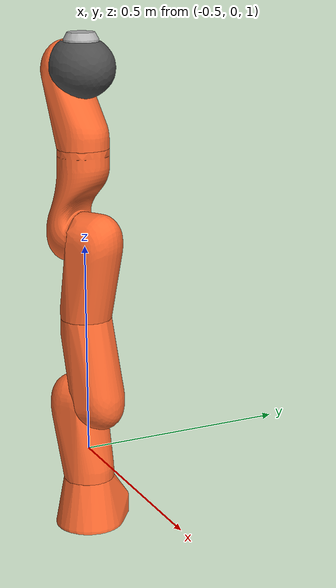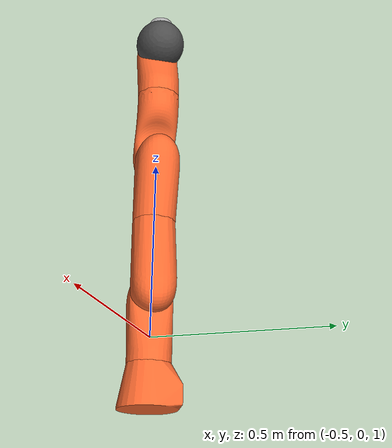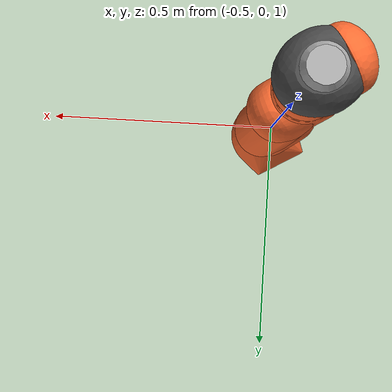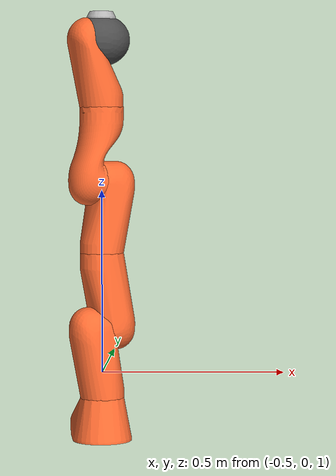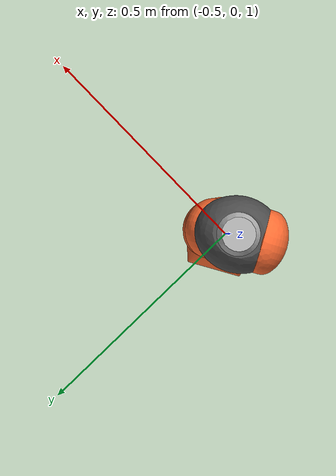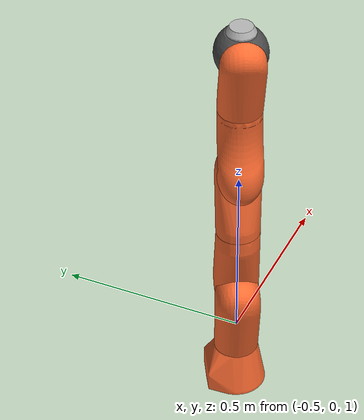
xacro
<?xml version="1.0"?>
<robot xmlns:xacro="http://www.ros.org/wiki/xacro"
       name="lwr" >

  <property name="M_PI" value="3.1415926535897931" />
  <property name="XORIGIN" value="-0.500" />
  <property name="YORIGIN" value="0.000" />
  <property name="ZORIGIN" value="0.800" />
  <!-- lbr-->
  <xacro:include filename="$(find lwr_description)/urdf/lwr.urdf.xacro" />

  <!-- generic simulator_gazebo plugins -->

  <xacro:include filename="$(find lwr_description)/gazebo/lwr.gazebo.urdf.xacro"/>
  <xacro:include filename="$(find lwr_description)/urdf/lwr.transmission.xacro"/>
  <!-- materials for visualization -->
  <xacro:include filename="$(find lwr_description)/urdf/materials.urdf.xacro" />

  <!-- world-->
  <link name="world"/>

  <link name="base_link"/>
  <joint name="base_joint" type="fixed">
    <parent link="world"/>
    <child link="base_link"/>
    <origin xyz="${XORIGIN} ${YORIGIN} ${ZORIGIN}"/>
  </joint>

  <gazebo reference="base_link">
    <static>true</static>>
  </gazebo>

  <xacro:macro name="tool">
    <link name="ati_link">
      <inertial>
        <origin xyz="0 0 0" rpy="0 0 0" />
        <mass value="0.730" />
        <inertia
          ixx="0.0001"
          ixy="0.0"
          ixz="0.0"
          iyy="0.0001"
          iyz="0.0"
          izz="0.0001" />
      </inertial>
    </link>
    <joint name="ati_joint" type="fixed">
       <parent link="link_7" />
       <child link="ati_link" />
       <origin xyz="0 0 0.0488" rpy="0 0 ${20.0*M_PI/180.0}" />
    </joint>
    <link name="ati_polaris_link"/>
    <joint name="ati_polaris_joint" type="fixed">
       <parent link="ati_link" />
       <child link="ati_polaris_link" />
       <origin xyz="0 0 0.0584" rpy="0 0 0" />
    </joint>
  </xacro:macro>

  <!--lbr-->
  <xacro:lwr parent="base_link">
    <!-- Position from origin -->
    <origin xyz="0 0 0.01" rpy="0 0 ${2*M_PI/3}" />
  </xacro:lwr>

   <xacro:lwr_gazebo/>
   <xacro:lwr_transmission/>
   <xacro:tool/>

</robot>

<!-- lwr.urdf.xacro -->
<robot xmlns:xacro="http://ros.org/wiki/xacro"
      xmlns:controller="http://playerstage.sourceforge.net/gazebo/xmlschema/#controller"
   name="lwr" >
   <xacro:property name="velocity_scale" value="1.0"/>
   <xacro:property name="effort_scale" value="10.0"/>

   <xacro:property name="M_PI" value="3.1415926535897931" />

   <xacro:property name="damping_factor" value="0.1"/>

   <xacro:property name="d0" value="${damping_factor*2.0}"/>
   <xacro:property name="d1" value="${damping_factor*1.8}"/>
   <xacro:property name="d2" value="${damping_factor*1.0}"/>
   <xacro:property name="d3" value="${damping_factor*1.5}"/>
   <xacro:property name="d4" value="${damping_factor*1.2}"/>
   <xacro:property name="d5" value="${damping_factor*1.0}"/>
   <xacro:property name="d6" value="${damping_factor*1.0}"/>

   <xacro:property name="friction_factor" value="1.0"/>

   <xacro:property name="f0" value="${friction_factor*1.0}"/>
   <xacro:property name="f1" value="${friction_factor*1.0}"/>
   <xacro:property name="f2" value="${friction_factor*1.0}"/>
   <xacro:property name="f3" value="${friction_factor*1.0}"/>
   <xacro:property name="f4" value="${friction_factor*0.4}"/>
   <xacro:property name="f5" value="${friction_factor*0.1}"/>
   <xacro:property name="f6" value="${friction_factor*0.1}"/>

   <xacro:macro name="lwr" params="parent *origin ">

      <!-- joint between {parent} and lwr_0_link -->
      <joint name="joint_base" type="fixed">

         <xacro:insert_block name="origin" />
         <parent link="${parent}" />
         <child link="link_0" />
      </joint>
      <link name="link_0">
          <inertial>
            <origin
              xyz="-0.000638499331014356 5.02538509694617E-06 0.0482289968116927"
              rpy="0 0 0" />
            <mass
              value="1.21032454350876" />
            <inertia
              ixx="0.0262560565710656"
              ixy="-5.2754950052563E-07"
              ixz="3.77940202490646E-05"
              iyy="0.0280724642508563"
              iyz="-2.56972470148208E-07"
              izz="0.0306998250407766" />
          </inertial>
         <visual>
            <origin xyz="0 0 0" rpy="0 0 ${M_PI}" />
            <geometry>
               <mesh filename="package://lwr_description/meshes/lwr/link0.stl" />
            </geometry>
            <material name="color_j0" />
         </visual>
         <collision>
            <origin xyz="0 0 0" rpy="0 0 ${M_PI}" />
            <geometry>
               <mesh filename="package://lwr_description/meshes/lwr/link0_c2.stl" />
            </geometry>
         </collision>
      </link>
      <!-- joint between lwr_0_link and lwr_1_link -->
      <joint name="joint_0" type="revolute">

         <parent link="link_0" />
         <child link="link_1" />
         <limit lower="${-170 * M_PI / 180}" upper="${170 * M_PI / 180}" effort="${effort_scale * 200}" velocity="${velocity_scale * 112.5 * M_PI / 180}" />

         <dynamics friction="${f0}" damping="${d0}"/>
         <origin xyz="0 0 0.102" rpy="0 0 0" />
         <axis xyz="0 0 1" />
      </joint>
      <link name="link_1">
          <inertial>
            <origin
              xyz="-6.33965437334127E-08 0.0233273473346096 0.118146290406178"
              rpy="0 0 0" />
              <mass
                value="2.30339938771869" />
            <inertia
              ixx="0.156081163626041"
              ixy="5.97319920503909E-08"
              ixz="-1.64780770629425E-07"
              iyy="0.153467542173805"
              iyz="0.0319168949093809"
              izz="0.0440736079943446" />
          </inertial>
         <visual>
            <origin xyz="0 0 0" rpy="0 0 ${M_PI}" />
            <geometry>
               <mesh filename="package://lwr_description/meshes/lwr/link1.stl" />
            </geometry>
            <material name="color_j1" />
         </visual>
         <collision>
            <origin xyz="0 0 0" rpy="0 0 ${M_PI}" />
            <geometry>
               <mesh filename="package://lwr_description/meshes/lwr/link1_c2.stl" />
            </geometry>
         </collision>
      </link>
      <!-- joint between lwr_1_link and lwr_2_link -->
      <joint name="joint_1" type="revolute">

         <parent link="link_1" />
         <child link="link_2" />
         <limit lower="${-120 * M_PI / 180}" upper="${120 * M_PI / 180}" effort="${effort_scale * 200}" velocity="${velocity_scale * 112.5 * M_PI / 180}" />

         <dynamics friction="${f1}" damping="${d1}"/>
         <origin xyz="0 0.0 0.2085" rpy="0 0 0" />
         <axis xyz="0 -1 0" />
      </joint>
      <link name="link_2">
    <inertial>
      <origin
        xyz="1.26774962153076E-06 -0.032746486541291 0.0736556727355962"
        rpy="0 0 0" />
        <mass
          value="2.30343543179071" />
      <inertia
        ixx="0.0142348526057094"
        ixy="-3.73763310100809E-08"
        ixz="1.70703603169075E-07"
        iyy="0.0141319978448755"
        iyz="0.00228090337255746"
        izz="0.00424792208583136" />
    </inertial>
         <visual>
            <origin xyz="0 0 0" rpy="0 0 ${M_PI}" />
            <geometry>
               <mesh filename="package://lwr_description/meshes/lwr/link2.stl" />
            </geometry>
            <material name="color_j2" />
         </visual>
         <collision>
            <origin xyz="0 0 0" rpy="0 0 ${M_PI}" />
            <geometry>
               <mesh filename="package://lwr_description/meshes/lwr/link2_c2.stl" />
            </geometry>
         </collision>
      </link>
      <!-- joint between lwr_2_link and lwr_3_link -->
      <joint name="joint_2" type="revolute">

         <parent link="link_2" />
         <child link="link_3" />
         <limit lower="${-170 * M_PI / 180}" upper="${170 * M_PI / 180}" effort="${effort_scale * 100}" velocity="${velocity_scale * 112.5 * M_PI / 180}" />

         <dynamics friction="${f2}" damping="${d2}"/>
         <origin xyz="0 0 0.1915" rpy="0 0 0" />
         <axis xyz="0 0 1" />
      </joint>
      <link name="link_3">
    <inertial>
      <origin
        xyz="-1.40921289121243E-06 -0.0233297626126898 0.11815047247629"
        rpy="0 0 0" />
        <mass
          value="2.30342143971329" />
      <inertia
        ixx="0.0156098024078732"
        ixy="4.75479645197283E-08"
        ixz="1.17852233217589E-07"
        iyy="0.0153476851366831"
        iyz="-0.00319215869825882"
        izz="0.0044071430916942" />
    </inertial>
         <visual>
            <origin xyz="0 0 0" rpy="0 0 ${M_PI}" />
            <geometry>
               <mesh filename="package://lwr_description/meshes/lwr/link3.stl" />
            </geometry>
            <material name="color_j3" />
         </visual>
         <collision>
            <origin xyz="0 0 0" rpy="0 0 ${M_PI}" />
            <geometry>
               <mesh filename="package://lwr_description/meshes/lwr/link3_c2.stl" />
            </geometry>
         </collision>
      </link>
      <!-- joint between lwr_3_link and lwr_4_link -->
      <joint name="joint_3" type="revolute">

         <parent link="link_3" />
         <child link="link_4" />
         <limit lower="${-120 * M_PI / 180}" upper="${120 * M_PI / 180}" effort="${effort_scale * 100}" velocity="${velocity_scale * 112.5 * M_PI / 180}" />

         <dynamics friction="${f3}" damping="${d3}"/>
         <origin xyz="0 0 0.2085" rpy="0 0 0" />
         <axis xyz="0 1 0" />
      </joint>
      <link name="link_4">
    <inertial>
      <origin
        xyz="1.12239473548659E-07 0.0327442387470235 0.073658815701594"
        rpy="0 0 0" />
        <mass
          value="2.30343586527606" />
      <inertia
        ixx="0.0142336552604204"
        ixy="-5.89296043886227E-08"
        ixz="-1.568273589226E-07"
        iyy="0.0141315528954361"
        iyz="-0.00228056254422505"
        izz="0.00424816761410708" />
    </inertial>
         <visual>
            <origin xyz="0 0 0" rpy="0 0 ${M_PI}" />
            <geometry>
               <mesh filename="package://lwr_description/meshes/lwr/link4.stl" />
            </geometry>
            <material name="color_j4" />
         </visual>
         <collision>
            <origin xyz="0 0 0" rpy="0 0 ${M_PI}" />
            <geometry>
               <mesh filename="package://lwr_description/meshes/lwr/link4_c2.stl" />
            </geometry>
         </collision>
      </link>
      <!-- joint between lwr_4_link and lwr_5_link -->
      <joint name="joint_4" type="revolute">

         <parent link="link_4" />
         <child link="link_5" />
         <limit lower="${-170 * M_PI / 180}" upper="${170 * M_PI / 180}" effort="${effort_scale * 100}" velocity="${velocity_scale * 180.0 * M_PI / 180}" />

         <dynamics friction="${f4}" damping="${d4}"/>
         <origin xyz="0 0.0 0.1915" rpy="0 0 0" />
         <axis xyz="0 0 1" />
      </joint>
      <link name="link_5">
    <inertial>
      <origin
        xyz="-6.00824789920296E-07 0.0207751869661564 0.0862053948486382"
        rpy="0 0 0" />
        <mass
          value="1.60059828363332" />
      <inertia
        ixx="0.00880806620496216"
        ixy="1.22820321842462E-07"
        ixz="-5.66844221164893E-08"
        iyy="0.00813520145401624"
        iyz="0.00261443543508601"
        izz="0.00359712267754715" />
    </inertial>
         <visual>
            <origin xyz="0 0 0" rpy="0 0 ${M_PI}" />
            <geometry>
               <mesh filename="package://lwr_description/meshes/lwr/link5.stl" />
            </geometry>
            <material name="color_j5" />
         </visual>
         <collision>
            <origin xyz="0 0 0" rpy="0 0 ${M_PI}" />
            <geometry>
               <mesh filename="package://lwr_description/meshes/lwr/link5_c2.stl" />
            </geometry>
         </collision>
      </link>
      <!-- joint between lwr_5_link and lwr_6_link -->
      <joint name="joint_5" type="revolute">

         <parent link="link_5" />
         <child link="link_6" />
         <limit lower="${-120 * M_PI / 180}" upper="${120 * M_PI / 180}" effort="${effort_scale * 30}" velocity="${velocity_scale * 112.5 * M_PI / 180}" />

         <dynamics friction="${f5}" damping="${d5}"/>
         <origin xyz="0 0 0.1985" rpy="0 0 0" />
         <axis xyz="0 -1 0" />
      </joint>
      <link name="link_6">
    <inertial>
      <origin
        xyz="-2.64519244286276E-08 -0.00451753627467652 -0.00295324741635017"
        rpy="0 0 0" />
        <mass
          value="1.49302436988808" />
        <inertia
          ixx="0.0298541138330797"
          ixy="-3.97658663154265E-09"
          ixz="-1.71667243685877E-09"
          iyy="0.0299834927882566"
          iyz="-2.53647350791604E-05"
          izz="0.0323627047307316" />
    </inertial>
         <visual>
            <origin xyz="0 0 0" rpy="0 0 ${M_PI}" />
            <geometry>
               <mesh filename="package://lwr_description/meshes/lwr/link6.stl" />
            </geometry>
            <material name="color_j6" />
         </visual>
         <collision>
            <origin xyz="0 0 0" rpy="0 0 ${M_PI}" />
            <geometry>
               <mesh filename="package://lwr_description/meshes/lwr/link6_c2.stl" />
            </geometry>
         </collision>
      </link>
      <!-- joint between lwr_6_link and lwr_7_link -->
      <joint name="joint_6" type="revolute">

         <parent link="link_6" />
         <child link="link_7" />
         <limit lower="${-170 * M_PI / 180}" upper="${170 * M_PI / 180}" effort="${effort_scale * 30}" velocity="${velocity_scale * 112.5 * M_PI / 180}" />
         <dynamics friction="${f6}" damping="${d6}"/>
         <origin xyz="0 0 0.078" rpy="0 0 0" />
         <axis xyz="0 0 1" />
      </joint>
      <link name="link_7">
    <inertial>
      <origin
        xyz="2.77555756156289E-17 1.11022302462516E-16 -0.015814675599801"
        rpy="0 0 0" />
        <mass
          value="0.108688241139613" />
        <inertia
          ixx="4.17908737998876E-02"
          ixy="0"
          ixz="0"
          iyy="4.17908737998876E-02"
          iyz="0"
          izz="7.00756879151782E-02" />
    </inertial>
         <visual>
            <origin xyz="0 0 0" rpy="0 0 ${M_PI}" />
            <geometry>
               <mesh filename="package://lwr_description/meshes/lwr/link7.stl" />
            </geometry>
            <material name="color_j7" />
         </visual>
         <collision>
            <origin xyz="0 0 0" rpy="0 0 ${M_PI}" />
            <geometry>
               <mesh filename="package://lwr_description/meshes/lwr/link7_c2.stl" />
            </geometry>
         </collision>
      </link>
   </xacro:macro>
</robot>

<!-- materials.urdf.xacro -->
<robot xmlns:xacro="http://ros.org/wiki/xacro">

	<material name="color_j0">
		<color rgba="${255/255} ${108/255} ${50/255} 1.0"/>
	</material>

	<material name="color_j1">
		<color rgba="${255/255} ${108/255} ${50/255} 1.0"/>
	</material>

	<material name="color_j2">
		<color rgba="${255/255} ${108/255} ${50/255} 1.0"/>
	</material>

	<material name="color_j3">
		<color rgba="${255/255} ${108/255} ${50/255} 1.0"/>
	</material>

	<material name="color_j4">
		<color rgba="${255/255} ${108/255} ${50/255} 1.0"/>
	</material>

	<material name="color_j5">
		<color rgba="${255/255} ${108/255} ${50/255} 1.0"/>
	</material>

	<material name="color_j6">
		<color rgba="0.3 0.3 0.3 1.0"/>
	</material>

	<material name="color_j7">
		<color rgba="0.7 0.7 0.7 1.0"/>
	</material>

</robot>
